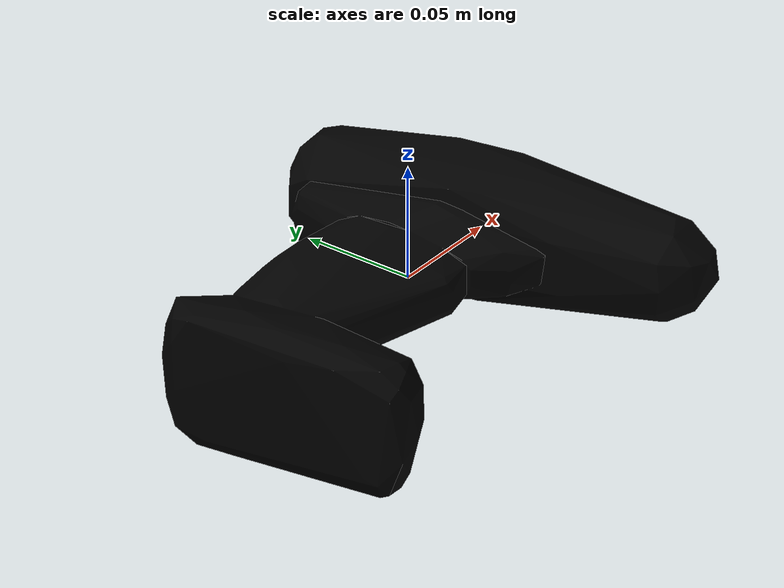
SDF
<?xml version="1.0"?>
<sdf version="1.4">
  <model name="035_power_drill_textured">
    <pose>0 0 0  0 0 0</pose>
    <link name="body">
      <inertial>
        <mass> 1.0 </mass>
        <pose>0 0 0 0 0 0</pose>
        <inertia>
          <ixx>0.0015560186051009886</ixx>
          <ixy>0.0</ixy>
          <ixz>0.0</ixz>
          <iyy>0.004056536469263297</iyy>
          <iyz>0.0</iyz>
          <izz>0.005346571143335713</izz>
        </inertia>
      </inertial>
      <visual name="visual">
        <geometry>
          <mesh>
            <uri>model://035_power_drill_textured/textured.dae</uri>
          </mesh>
        </geometry>
        <pose>-0.0286556194055442 0.02705325735486305 0.023211193256828643 -3.116476980099822 0.030902392350690575 1.7380765304204104</pose>
      </visual>
      <collision name="collision">
        <geometry>
          <mesh>
            <uri>model://035_power_drill_textured/textured.col.dae</uri>
          </mesh>
        </geometry>
        <max_contacts>10</max_contacts>
        <surface>
          <friction>
            <ode>
              <mu>0.8</mu>
              <mu2>0.8</mu2>
              <slip1>0</slip1>
              <slip2>0</slip2>
            </ode>
            <torsional>
              <ode/>
            </torsional>
          </friction>
          <contact>
            <ode>
              <kp>1000000.0</kp>
              <kd>1.0</kd>
              <max_vel>0.0</max_vel>
            </ode>
          </contact>
        </surface>
        <pose>-0.0286556194055442 0.02705325735486305 0.023211193256828643 -3.116476980099822 0.030902392350690575 1.7380765304204104</pose>
      </collision>
    </link>
  </model>
</sdf>
